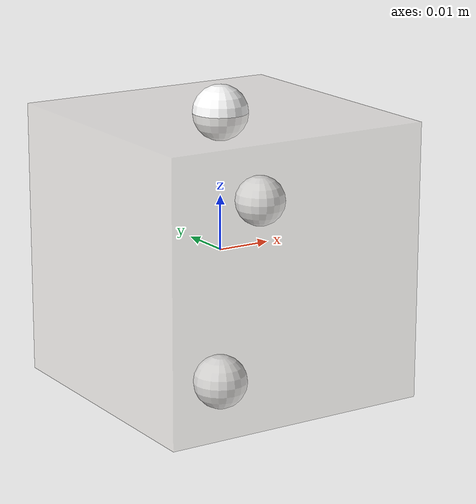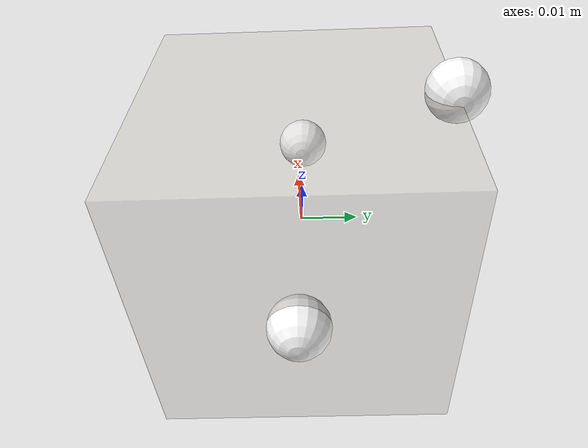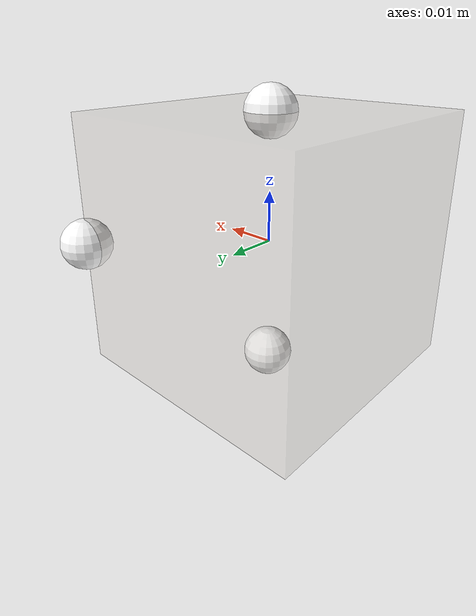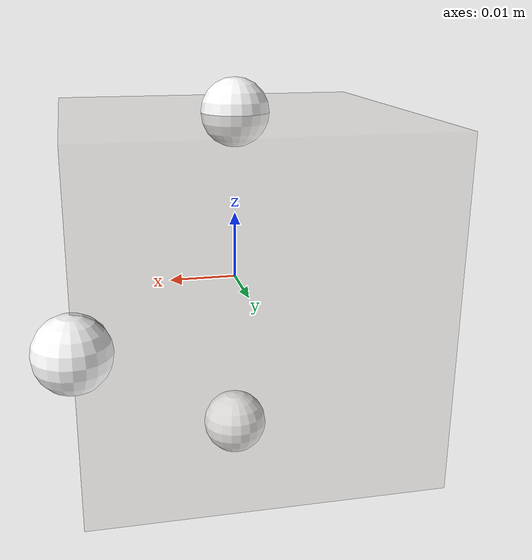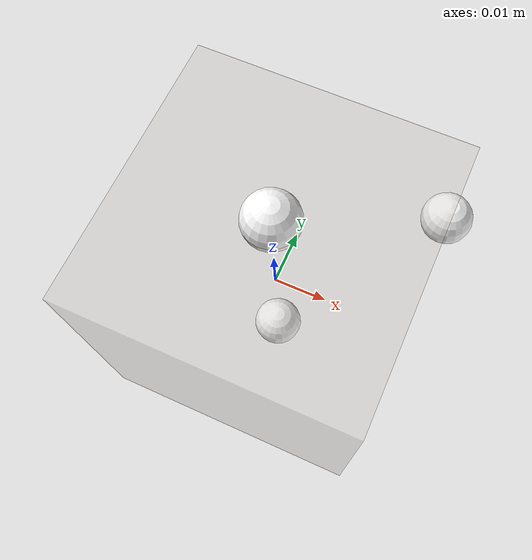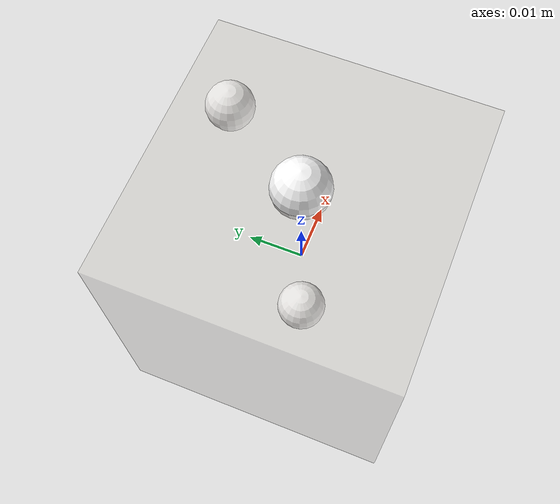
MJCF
<mujoco model="custom-cube">
  <asset>
    <texture name="texture:block" file="../textures/block.png" gridsize="3 4" gridlayout=".U..LFRB.D.." />
    <material name="material:visual" texture="texture:block" specular="1" shininess="0.3" reflectance="0" rgba="1 1 1 0.25"/>
</asset>
  <worldbody>
    <body>
      <body name="visual">
        <geom pos="0 0 0" type="box" size="0.025 0.025 0.025" solimp="0.998 0.998 0.001" solref="0.001 1" density="100" friction="0.95 0.3 0.1" material="material:visual" group="1" conaffinity="0" contype="0" />
      </body>

      <site rgba="1 1 1 1" size="0.005" pos="0 0 -0.025" name="bottom_site"/>
      <site rgba="1 1 1 1" size="0.005" pos="0 0 0.025" name="top_site"/>
      <site rgba="1 1 1 1" size="0.005" pos="0.025 0.025 0" name="horizontal_radius_site"/>
    </body>
  </worldbody>
</mujoco>
